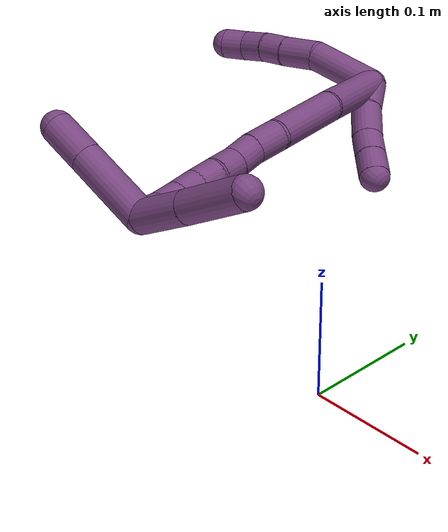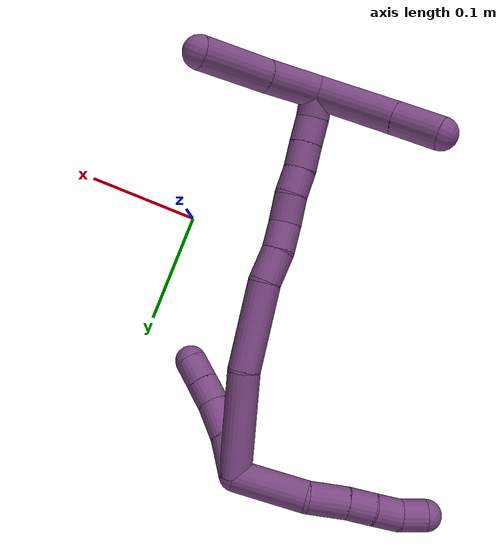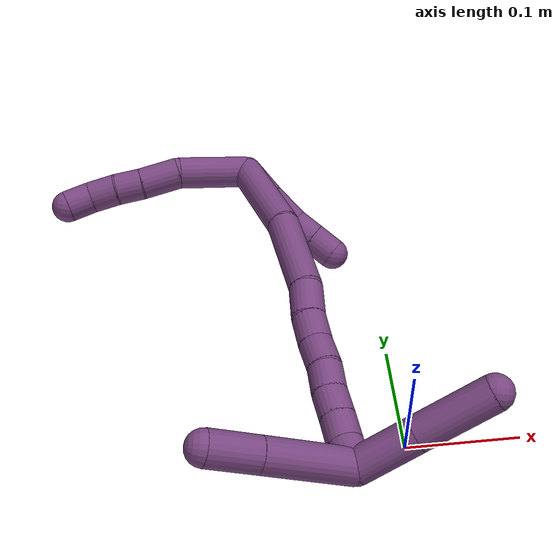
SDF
<sdf version="1.7">
 <world name="default">
  <model name="20">
   <static>0</static>
   <link name="20">
    <collision name="collision-cylinder-e_1_2_8">
     <pose>-0.001101 -0.00564 0.027772 0.200343 -0.038818 -0.003902</pose>
     <geometry><cylinder><radius>0.0125</radius><length>0.056721</length></cylinder></geometry>
     <surface>
      <friction><ode><mu>1.16</mu><mu2>1.16</mu2><slip1>0</slip1><slip2>0</slip2></ode></friction>
      <contact><ode><kp>1e+06</kp><kd>1</kd><max_vel>0</max_vel><min_depth>0.001</min_depth></ode></contact>
     </surface>
    </collision>
    <visual name="visual-cylinder-e_1_2_8">
     <pose>-0.001101 -0.00564 0.027772 0.200343 -0.038818 -0.003902</pose>
     <geometry><cylinder><radius>0.0125</radius><length>0.056721</length></cylinder></geometry>
     <material><ambient>0.478431 0.278431 0.509804 1</ambient></material>
    </visual>
    <collision name="collision-cylinder-e_2_8_9">
     <pose>-0.006888 -0.015906 0.069484 0.320464 -0.308916 -0.050317</pose>
     <geometry><cylinder><radius>0.0125</radius><length>0.030833</length></cylinder></geometry>
     <surface>
      <friction><ode><mu>1.16</mu><mu2>1.16</mu2><slip1>0</slip1><slip2>0</slip2></ode></friction>
      <contact><ode><kp>1e+06</kp><kd>1</kd><max_vel>0</max_vel><min_depth>0.001</min_depth></ode></contact>
     </surface>
    </collision>
    <visual name="visual-cylinder-e_2_8_9">
     <pose>-0.006888 -0.015906 0.069484 0.320464 -0.308916 -0.050317</pose>
     <geometry><cylinder><radius>0.0125</radius><length>0.030833</length></cylinder></geometry>
     <material><ambient>0.478431 0.278431 0.509804 1</ambient></material>
    </visual>
    <collision name="collision-cylinder-e_3_9_10">
     <pose>-0.014598 -0.022808 0.093021 0.232833 -0.297379 -0.035032</pose>
     <geometry><cylinder><radius>0.0125</radius><length>0.020634</length></cylinder></geometry>
     <surface>
      <friction><ode><mu>1.16</mu><mu2>1.16</mu2><slip1>0</slip1><slip2>0</slip2></ode></friction>
      <contact><ode><kp>1e+06</kp><kd>1</kd><max_vel>0</max_vel><min_depth>0.001</min_depth></ode></contact>
     </surface>
    </collision>
    <visual name="visual-cylinder-e_3_9_10">
     <pose>-0.014598 -0.022808 0.093021 0.232833 -0.297379 -0.035032</pose>
     <geometry><cylinder><radius>0.0125</radius><length>0.020634</length></cylinder></geometry>
     <material><ambient>0.478431 0.278431 0.509804 1</ambient></material>
    </visual>
    <collision name="collision-cylinder-e_4_10_11">
     <pose>-0.021959 -0.027396 0.112253 0.235508 -0.412646 -0.049511</pose>
     <geometry><cylinder><radius>0.0125</radius><length>0.021632</length></cylinder></geometry>
     <surface>
      <friction><ode><mu>1.16</mu><mu2>1.16</mu2><slip1>0</slip1><slip2>0</slip2></ode></friction>
      <contact><ode><kp>1e+06</kp><kd>1</kd><max_vel>0</max_vel><min_depth>0.001</min_depth></ode></contact>
     </surface>
    </collision>
    <visual name="visual-cylinder-e_4_10_11">
     <pose>-0.021959 -0.027396 0.112253 0.235508 -0.412646 -0.049511</pose>
     <geometry><cylinder><radius>0.0125</radius><length>0.021632</length></cylinder></geometry>
     <material><ambient>0.478431 0.278431 0.509804 1</ambient></material>
    </visual>
    <collision name="collision-cylinder-e_5_11_6">
     <pose>-0.028911 -0.034127 0.130574 0.470663 -0.262102 -0.063187</pose>
     <geometry><cylinder><radius>0.0125</radius><length>0.02018</length></cylinder></geometry>
     <surface>
      <friction><ode><mu>1.16</mu><mu2>1.16</mu2><slip1>0</slip1><slip2>0</slip2></ode></friction>
      <contact><ode><kp>1e+06</kp><kd>1</kd><max_vel>0</max_vel><min_depth>0.001</min_depth></ode></contact>
     </surface>
    </collision>
    <visual name="visual-cylinder-e_5_11_6">
     <pose>-0.028911 -0.034127 0.130574 0.470663 -0.262102 -0.063187</pose>
     <geometry><cylinder><radius>0.0125</radius><length>0.02018</length></cylinder></geometry>
     <material><ambient>0.478431 0.278431 0.509804 1</ambient></material>
    </visual>
    <collision name="collision-cylinder-e_1_2_12">
     <pose>-0.002008 -0.011277 -0.010142 2.30326 -0.131627 -0.293708</pose>
     <geometry><cylinder><radius>0.0125</radius><length>0.030597</length></cylinder></geometry>
     <surface>
      <friction><ode><mu>1.16</mu><mu2>1.16</mu2><slip1>0</slip1><slip2>0</slip2></ode></friction>
      <contact><ode><kp>1e+06</kp><kd>1</kd><max_vel>0</max_vel><min_depth>0.001</min_depth></ode></contact>
     </surface>
    </collision>
    <visual name="visual-cylinder-e_1_2_12">
     <pose>-0.002008 -0.011277 -0.010142 2.30326 -0.131627 -0.293708</pose>
     <geometry><cylinder><radius>0.0125</radius><length>0.030597</length></cylinder></geometry>
     <material><ambient>0.478431 0.278431 0.509804 1</ambient></material>
    </visual>
    <collision name="collision-cylinder-e_2_12_13">
     <pose>-0.007877 -0.030905 -0.03135 2.49513 -0.271616 -0.774653</pose>
     <geometry><cylinder><radius>0.0125</radius><length>0.028785</length></cylinder></geometry>
     <surface>
      <friction><ode><mu>1.16</mu><mu2>1.16</mu2><slip1>0</slip1><slip2>0</slip2></ode></friction>
      <contact><ode><kp>1e+06</kp><kd>1</kd><max_vel>0</max_vel><min_depth>0.001</min_depth></ode></contact>
     </surface>
    </collision>
    <visual name="visual-cylinder-e_2_12_13">
     <pose>-0.007877 -0.030905 -0.03135 2.49513 -0.271616 -0.774653</pose>
     <geometry><cylinder><radius>0.0125</radius><length>0.028785</length></cylinder></geometry>
     <material><ambient>0.478431 0.278431 0.509804 1</ambient></material>
    </visual>
    <collision name="collision-cylinder-e_3_13_14">
     <pose>-0.013189 -0.04459 -0.050759 2.57271 -0.14543 -0.488355</pose>
     <geometry><cylinder><radius>0.0125</radius><length>0.020013</length></cylinder></geometry>
     <surface>
      <friction><ode><mu>1.16</mu><mu2>1.16</mu2><slip1>0</slip1><slip2>0</slip2></ode></friction>
      <contact><ode><kp>1e+06</kp><kd>1</kd><max_vel>0</max_vel><min_depth>0.001</min_depth></ode></contact>
     </surface>
    </collision>
    <visual name="visual-cylinder-e_3_13_14">
     <pose>-0.013189 -0.04459 -0.050759 2.57271 -0.14543 -0.488355</pose>
     <geometry><cylinder><radius>0.0125</radius><length>0.020013</length></cylinder></geometry>
     <material><ambient>0.478431 0.278431 0.509804 1</ambient></material>
    </visual>
    <collision name="collision-cylinder-e_4_14_5">
     <pose>-0.016299 -0.05531 -0.067724 2.58323 -0.16184 -0.551386</pose>
     <geometry><cylinder><radius>0.0125</radius><length>0.020605</length></cylinder></geometry>
     <surface>
      <friction><ode><mu>1.16</mu><mu2>1.16</mu2><slip1>0</slip1><slip2>0</slip2></ode></friction>
      <contact><ode><kp>1e+06</kp><kd>1</kd><max_vel>0</max_vel><min_depth>0.001</min_depth></ode></contact>
     </surface>
    </collision>
    <visual name="visual-cylinder-e_4_14_5">
     <pose>-0.016299 -0.05531 -0.067724 2.58323 -0.16184 -0.551386</pose>
     <geometry><cylinder><radius>0.0125</radius><length>0.020605</length></cylinder></geometry>
     <material><ambient>0.478431 0.278431 0.509804 1</ambient></material>
    </visual>
    <collision name="collision-cylinder-e_1_2_15">
     <pose>0.011477 -0.037139 -0.013118 1.91032 0.28354 0.398215</pose>
     <geometry><cylinder><radius>0.0125</radius><length>0.082051</length></cylinder></geometry>
     <surface>
      <friction><ode><mu>1.16</mu><mu2>1.16</mu2><slip1>0</slip1><slip2>0</slip2></ode></friction>
      <contact><ode><kp>1e+06</kp><kd>1</kd><max_vel>0</max_vel><min_depth>0.001</min_depth></ode></contact>
     </surface>
    </collision>
    <visual name="visual-cylinder-e_1_2_15">
     <pose>0.011477 -0.037139 -0.013118 1.91032 0.28354 0.398215</pose>
     <geometry><cylinder><radius>0.0125</radius><length>0.082051</length></cylinder></geometry>
     <material><ambient>0.478431 0.278431 0.509804 1</ambient></material>
    </visual>
    <collision name="collision-cylinder-e_2_15_16">
     <pose>0.027038 -0.107045 -0.033681 1.79422 0.120944 0.151403</pose>
     <geometry><cylinder><radius>0.0125</radius><length>0.067699</length></cylinder></geometry>
     <surface>
      <friction><ode><mu>1.16</mu><mu2>1.16</mu2><slip1>0</slip1><slip2>0</slip2></ode></friction>
      <contact><ode><kp>1e+06</kp><kd>1</kd><max_vel>0</max_vel><min_depth>0.001</min_depth></ode></contact>
     </surface>
    </collision>
    <visual name="visual-cylinder-e_2_15_16">
     <pose>0.027038 -0.107045 -0.033681 1.79422 0.120944 0.151403</pose>
     <geometry><cylinder><radius>0.0125</radius><length>0.067699</length></cylinder></geometry>
     <material><ambient>0.478431 0.278431 0.509804 1</ambient></material>
    </visual>
    <collision name="collision-cylinder-e_3_16_17">
     <pose>0.030376 -0.152653 -0.042125 1.64847 -0.057862 -0.062537</pose>
     <geometry><cylinder><radius>0.0125</radius><length>0.025803</length></cylinder></geometry>
     <surface>
      <friction><ode><mu>1.16</mu><mu2>1.16</mu2><slip1>0</slip1><slip2>0</slip2></ode></friction>
      <contact><ode><kp>1e+06</kp><kd>1</kd><max_vel>0</max_vel><min_depth>0.001</min_depth></ode></contact>
     </surface>
    </collision>
    <visual name="visual-cylinder-e_3_16_17">
     <pose>0.030376 -0.152653 -0.042125 1.64847 -0.057862 -0.062537</pose>
     <geometry><cylinder><radius>0.0125</radius><length>0.025803</length></cylinder></geometry>
     <material><ambient>0.478431 0.278431 0.509804 1</ambient></material>
    </visual>
    <collision name="collision-cylinder-e_4_17_18">
     <pose>0.028965 -0.176011 -0.045658 1.80714 -0.061418 -0.077951</pose>
     <geometry><cylinder><radius>0.0125</radius><length>0.021677</length></cylinder></geometry>
     <surface>
      <friction><ode><mu>1.16</mu><mu2>1.16</mu2><slip1>0</slip1><slip2>0</slip2></ode></friction>
      <contact><ode><kp>1e+06</kp><kd>1</kd><max_vel>0</max_vel><min_depth>0.001</min_depth></ode></contact>
     </surface>
    </collision>
    <visual name="visual-cylinder-e_4_17_18">
     <pose>0.028965 -0.176011 -0.045658 1.80714 -0.061418 -0.077951</pose>
     <geometry><cylinder><radius>0.0125</radius><length>0.021677</length></cylinder></geometry>
     <material><ambient>0.478431 0.278431 0.509804 1</ambient></material>
    </visual>
    <collision name="collision-cylinder-e_5_18_19">
     <pose>0.029717 -0.197118 -0.050821 1.81425 0.129214 0.16509</pose>
     <geometry><cylinder><radius>0.0125</radius><length>0.022006</length></cylinder></geometry>
     <surface>
      <friction><ode><mu>1.16</mu><mu2>1.16</mu2><slip1>0</slip1><slip2>0</slip2></ode></friction>
      <contact><ode><kp>1e+06</kp><kd>1</kd><max_vel>0</max_vel><min_depth>0.001</min_depth></ode></contact>
     </surface>
    </collision>
    <visual name="visual-cylinder-e_5_18_19">
     <pose>0.029717 -0.197118 -0.050821 1.81425 0.129214 0.16509</pose>
     <geometry><cylinder><radius>0.0125</radius><length>0.022006</length></cylinder></geometry>
     <material><ambient>0.478431 0.278431 0.509804 1</ambient></material>
    </visual>
    <collision name="collision-cylinder-e_6_19_20">
     <pose>0.030941 -0.217757 -0.054891 1.71305 -0.019095 -0.022025</pose>
     <geometry><cylinder><radius>0.0125</radius><length>0.020309</length></cylinder></geometry>
     <surface>
      <friction><ode><mu>1.16</mu><mu2>1.16</mu2><slip1>0</slip1><slip2>0</slip2></ode></friction>
      <contact><ode><kp>1e+06</kp><kd>1</kd><max_vel>0</max_vel><min_depth>0.001</min_depth></ode></contact>
     </surface>
    </collision>
    <visual name="visual-cylinder-e_6_19_20">
     <pose>0.030941 -0.217757 -0.054891 1.71305 -0.019095 -0.022025</pose>
     <geometry><cylinder><radius>0.0125</radius><length>0.020309</length></cylinder></geometry>
     <material><ambient>0.478431 0.278431 0.509804 1</ambient></material>
    </visual>
    <collision name="collision-cylinder-e_7_20_21">
     <pose>0.031243 -0.237564 -0.058684 1.80751 0.049364 0.062681</pose>
     <geometry><cylinder><radius>0.0125</radius><length>0.020099</length></cylinder></geometry>
     <surface>
      <friction><ode><mu>1.16</mu><mu2>1.16</mu2><slip1>0</slip1><slip2>0</slip2></ode></friction>
      <contact><ode><kp>1e+06</kp><kd>1</kd><max_vel>0</max_vel><min_depth>0.001</min_depth></ode></contact>
     </surface>
    </collision>
    <visual name="visual-cylinder-e_7_20_21">
     <pose>0.031243 -0.237564 -0.058684 1.80751 0.049364 0.062681</pose>
     <geometry><cylinder><radius>0.0125</radius><length>0.020099</length></cylinder></geometry>
     <material><ambient>0.478431 0.278431 0.509804 1</ambient></material>
    </visual>
    <collision name="collision-cylinder-e_8_21_22">
     <pose>0.03229 -0.257245 -0.063116 1.77728 0.054335 0.066887</pose>
     <geometry><cylinder><radius>0.0125</radius><length>0.020308</length></cylinder></geometry>
     <surface>
      <friction><ode><mu>1.16</mu><mu2>1.16</mu2><slip1>0</slip1><slip2>0</slip2></ode></friction>
      <contact><ode><kp>1e+06</kp><kd>1</kd><max_vel>0</max_vel><min_depth>0.001</min_depth></ode></contact>
     </surface>
    </collision>
    <visual name="visual-cylinder-e_8_21_22">
     <pose>0.03229 -0.257245 -0.063116 1.77728 0.054335 0.066887</pose>
     <geometry><cylinder><radius>0.0125</radius><length>0.020308</length></cylinder></geometry>
     <material><ambient>0.478431 0.278431 0.509804 1</ambient></material>
    </visual>
    <collision name="collision-cylinder-e_9_22_1">
     <pose>0.035466 -0.276557 -0.067534 1.81497 0.264884 0.337725</pose>
     <geometry><cylinder><radius>0.0125</radius><length>0.020049</length></cylinder></geometry>
     <surface>
      <friction><ode><mu>1.16</mu><mu2>1.16</mu2><slip1>0</slip1><slip2>0</slip2></ode></friction>
      <contact><ode><kp>1e+06</kp><kd>1</kd><max_vel>0</max_vel><min_depth>0.001</min_depth></ode></contact>
     </surface>
    </collision>
    <visual name="visual-cylinder-e_9_22_1">
     <pose>0.035466 -0.276557 -0.067534 1.81497 0.264884 0.337725</pose>
     <geometry><cylinder><radius>0.0125</radius><length>0.020049</length></cylinder></geometry>
     <material><ambient>0.478431 0.278431 0.509804 1</ambient></material>
    </visual>
    <collision name="collision-cylinder-e_1_1_23">
     <pose>0.042315 -0.287377 -0.038177 0.045161 0.132378 0.002994</pose>
     <geometry><cylinder><radius>0.0125</radius><length>0.064016</length></cylinder></geometry>
     <surface>
      <friction><ode><mu>1.16</mu><mu2>1.16</mu2><slip1>0</slip1><slip2>0</slip2></ode></friction>
      <contact><ode><kp>1e+06</kp><kd>1</kd><max_vel>0</max_vel><min_depth>0.001</min_depth></ode></contact>
     </surface>
    </collision>
    <visual name="visual-cylinder-e_1_1_23">
     <pose>0.042315 -0.287377 -0.038177 0.045161 0.132378 0.002994</pose>
     <geometry><cylinder><radius>0.0125</radius><length>0.064016</length></cylinder></geometry>
     <material><ambient>0.478431 0.278431 0.509804 1</ambient></material>
    </visual>
    <collision name="collision-cylinder-e_2_23_4">
     <pose>0.048767 -0.289564 0.011356 0.042279 0.124103 0.002627</pose>
     <geometry><cylinder><radius>0.0125</radius><length>0.035984</length></cylinder></geometry>
     <surface>
      <friction><ode><mu>1.16</mu><mu2>1.16</mu2><slip1>0</slip1><slip2>0</slip2></ode></friction>
      <contact><ode><kp>1e+06</kp><kd>1</kd><max_vel>0</max_vel><min_depth>0.001</min_depth></ode></contact>
     </surface>
    </collision>
    <visual name="visual-cylinder-e_2_23_4">
     <pose>0.048767 -0.289564 0.011356 0.042279 0.124103 0.002627</pose>
     <geometry><cylinder><radius>0.0125</radius><length>0.035984</length></cylinder></geometry>
     <material><ambient>0.478431 0.278431 0.509804 1</ambient></material>
    </visual>
    <collision name="collision-cylinder-e_1_1_24">
     <pose>0.052114 -0.280009 -0.086124 -2.79142 0.681153 -2.21563</pose>
     <geometry><cylinder><radius>0.0125</radius><length>0.044541</length></cylinder></geometry>
     <surface>
      <friction><ode><mu>1.16</mu><mu2>1.16</mu2><slip1>0</slip1><slip2>0</slip2></ode></friction>
      <contact><ode><kp>1e+06</kp><kd>1</kd><max_vel>0</max_vel><min_depth>0.001</min_depth></ode></contact>
     </surface>
    </collision>
    <visual name="visual-cylinder-e_1_1_24">
     <pose>0.052114 -0.280009 -0.086124 -2.79142 0.681153 -2.21563</pose>
     <geometry><cylinder><radius>0.0125</radius><length>0.044541</length></cylinder></geometry>
     <material><ambient>0.478431 0.278431 0.509804 1</ambient></material>
    </visual>
    <collision name="collision-cylinder-e_2_24_3">
     <pose>0.084202 -0.267301 -0.122292 -2.81379 0.709492 -2.30173</pose>
     <geometry><cylinder><radius>0.0125</radius><length>0.055459</length></cylinder></geometry>
     <surface>
      <friction><ode><mu>1.16</mu><mu2>1.16</mu2><slip1>0</slip1><slip2>0</slip2></ode></friction>
      <contact><ode><kp>1e+06</kp><kd>1</kd><max_vel>0</max_vel><min_depth>0.001</min_depth></ode></contact>
     </surface>
    </collision>
    <visual name="visual-cylinder-e_2_24_3">
     <pose>0.084202 -0.267301 -0.122292 -2.81379 0.709492 -2.30173</pose>
     <geometry><cylinder><radius>0.0125</radius><length>0.055459</length></cylinder></geometry>
     <material><ambient>0.478431 0.278431 0.509804 1</ambient></material>
    </visual>
    <collision name="collision-sphere-3">
     <pose>0.102266 -0.260527 -0.14221 0 -0 0</pose>
     <geometry><sphere><radius>0.0125</radius></sphere></geometry>
     <surface>
      <friction><ode><mu>1.16</mu><mu2>1.16</mu2><slip1>0</slip1><slip2>0</slip2></ode></friction>
      <contact><ode><kp>1e+06</kp><kd>1</kd><max_vel>0</max_vel><min_depth>0.001</min_depth></ode></contact>
     </surface>
    </collision>
    <visual name="visual-sphere-3">
     <pose>0.102266 -0.260527 -0.14221 0 -0 0</pose>
     <geometry><sphere><radius>0.0125</radius></sphere></geometry>
     <material><ambient>0.478431 0.278431 0.509804 1</ambient></material>
    </visual>
    <collision name="collision-sphere-24">
     <pose>0.066137 -0.274074 -0.102374 0 -0 0</pose>
     <geometry><sphere><radius>0.0125</radius></sphere></geometry>
     <surface>
      <friction><ode><mu>1.16</mu><mu2>1.16</mu2><slip1>0</slip1><slip2>0</slip2></ode></friction>
      <contact><ode><kp>1e+06</kp><kd>1</kd><max_vel>0</max_vel><min_depth>0.001</min_depth></ode></contact>
     </surface>
    </collision>
    <visual name="visual-sphere-24">
     <pose>0.066137 -0.274074 -0.102374 0 -0 0</pose>
     <geometry><sphere><radius>0.0125</radius></sphere></geometry>
     <material><ambient>0.478431 0.278431 0.509804 1</ambient></material>
    </visual>
    <collision name="collision-sphere-4">
     <pose>0.050994 -0.290319 0.029194 0 -0 0</pose>
     <geometry><sphere><radius>0.0125</radius></sphere></geometry>
     <surface>
      <friction><ode><mu>1.16</mu><mu2>1.16</mu2><slip1>0</slip1><slip2>0</slip2></ode></friction>
      <contact><ode><kp>1e+06</kp><kd>1</kd><max_vel>0</max_vel><min_depth>0.001</min_depth></ode></contact>
     </surface>
    </collision>
    <visual name="visual-sphere-4">
     <pose>0.050994 -0.290319 0.029194 0 -0 0</pose>
     <geometry><sphere><radius>0.0125</radius></sphere></geometry>
     <material><ambient>0.478431 0.278431 0.509804 1</ambient></material>
    </visual>
    <collision name="collision-sphere-23">
     <pose>0.04654 -0.288809 -0.006481 0 -0 0</pose>
     <geometry><sphere><radius>0.0125</radius></sphere></geometry>
     <surface>
      <friction><ode><mu>1.16</mu><mu2>1.16</mu2><slip1>0</slip1><slip2>0</slip2></ode></friction>
      <contact><ode><kp>1e+06</kp><kd>1</kd><max_vel>0</max_vel><min_depth>0.001</min_depth></ode></contact>
     </surface>
    </collision>
    <visual name="visual-sphere-23">
     <pose>0.04654 -0.288809 -0.006481 0 -0 0</pose>
     <geometry><sphere><radius>0.0125</radius></sphere></geometry>
     <material><ambient>0.478431 0.278431 0.509804 1</ambient></material>
    </visual>
    <collision name="collision-sphere-1">
     <pose>0.038091 -0.285945 -0.069873 0 -0 0</pose>
     <geometry><sphere><radius>0.0125</radius></sphere></geometry>
     <surface>
      <friction><ode><mu>1.16</mu><mu2>1.16</mu2><slip1>0</slip1><slip2>0</slip2></ode></friction>
      <contact><ode><kp>1e+06</kp><kd>1</kd><max_vel>0</max_vel><min_depth>0.001</min_depth></ode></contact>
     </surface>
    </collision>
    <visual name="visual-sphere-1">
     <pose>0.038091 -0.285945 -0.069873 0 -0 0</pose>
     <geometry><sphere><radius>0.0125</radius></sphere></geometry>
     <material><ambient>0.478431 0.278431 0.509804 1</ambient></material>
    </visual>
    <collision name="collision-sphere-22">
     <pose>0.032842 -0.267169 -0.065195 0 -0 0</pose>
     <geometry><sphere><radius>0.0125</radius></sphere></geometry>
     <surface>
      <friction><ode><mu>1.16</mu><mu2>1.16</mu2><slip1>0</slip1><slip2>0</slip2></ode></friction>
      <contact><ode><kp>1e+06</kp><kd>1</kd><max_vel>0</max_vel><min_depth>0.001</min_depth></ode></contact>
     </surface>
    </collision>
    <visual name="visual-sphere-22">
     <pose>0.032842 -0.267169 -0.065195 0 -0 0</pose>
     <geometry><sphere><radius>0.0125</radius></sphere></geometry>
     <material><ambient>0.478431 0.278431 0.509804 1</ambient></material>
    </visual>
    <collision name="collision-sphere-21">
     <pose>0.031739 -0.247322 -0.061038 0 -0 0</pose>
     <geometry><sphere><radius>0.0125</radius></sphere></geometry>
     <surface>
      <friction><ode><mu>1.16</mu><mu2>1.16</mu2><slip1>0</slip1><slip2>0</slip2></ode></friction>
      <contact><ode><kp>1e+06</kp><kd>1</kd><max_vel>0</max_vel><min_depth>0.001</min_depth></ode></contact>
     </surface>
    </collision>
    <visual name="visual-sphere-21">
     <pose>0.031739 -0.247322 -0.061038 0 -0 0</pose>
     <geometry><sphere><radius>0.0125</radius></sphere></geometry>
     <material><ambient>0.478431 0.278431 0.509804 1</ambient></material>
    </visual>
    <collision name="collision-sphere-6">
     <pose>-0.031525 -0.038547 0.139259 0 -0 0</pose>
     <geometry><sphere><radius>0.0125</radius></sphere></geometry>
     <surface>
      <friction><ode><mu>1.16</mu><mu2>1.16</mu2><slip1>0</slip1><slip2>0</slip2></ode></friction>
      <contact><ode><kp>1e+06</kp><kd>1</kd><max_vel>0</max_vel><min_depth>0.001</min_depth></ode></contact>
     </surface>
    </collision>
    <visual name="visual-sphere-6">
     <pose>-0.031525 -0.038547 0.139259 0 -0 0</pose>
     <geometry><sphere><radius>0.0125</radius></sphere></geometry>
     <material><ambient>0.478431 0.278431 0.509804 1</ambient></material>
    </visual>
    <collision name="collision-sphere-11">
     <pose>-0.026296 -0.029708 0.121888 0 -0 0</pose>
     <geometry><sphere><radius>0.0125</radius></sphere></geometry>
     <surface>
      <friction><ode><mu>1.16</mu><mu2>1.16</mu2><slip1>0</slip1><slip2>0</slip2></ode></friction>
      <contact><ode><kp>1e+06</kp><kd>1</kd><max_vel>0</max_vel><min_depth>0.001</min_depth></ode></contact>
     </surface>
    </collision>
    <visual name="visual-sphere-11">
     <pose>-0.026296 -0.029708 0.121888 0 -0 0</pose>
     <geometry><sphere><radius>0.0125</radius></sphere></geometry>
     <material><ambient>0.478431 0.278431 0.509804 1</ambient></material>
    </visual>
    <collision name="collision-sphere-10">
     <pose>-0.017621 -0.025084 0.102619 0 -0 0</pose>
     <geometry><sphere><radius>0.0125</radius></sphere></geometry>
     <surface>
      <friction><ode><mu>1.16</mu><mu2>1.16</mu2><slip1>0</slip1><slip2>0</slip2></ode></friction>
      <contact><ode><kp>1e+06</kp><kd>1</kd><max_vel>0</max_vel><min_depth>0.001</min_depth></ode></contact>
     </surface>
    </collision>
    <visual name="visual-sphere-10">
     <pose>-0.017621 -0.025084 0.102619 0 -0 0</pose>
     <geometry><sphere><radius>0.0125</radius></sphere></geometry>
     <material><ambient>0.478431 0.278431 0.509804 1</ambient></material>
    </visual>
    <collision name="collision-sphere-9">
     <pose>-0.011575 -0.020532 0.083423 0 -0 0</pose>
     <geometry><sphere><radius>0.0125</radius></sphere></geometry>
     <surface>
      <friction><ode><mu>1.16</mu><mu2>1.16</mu2><slip1>0</slip1><slip2>0</slip2></ode></friction>
      <contact><ode><kp>1e+06</kp><kd>1</kd><max_vel>0</max_vel><min_depth>0.001</min_depth></ode></contact>
     </surface>
    </collision>
    <visual name="visual-sphere-9">
     <pose>-0.011575 -0.020532 0.083423 0 -0 0</pose>
     <geometry><sphere><radius>0.0125</radius></sphere></geometry>
     <material><ambient>0.478431 0.278431 0.509804 1</ambient></material>
    </visual>
    <collision name="collision-sphere-2">
     <geometry><sphere><radius>0.0125</radius></sphere></geometry>
     <surface>
      <friction><ode><mu>1.16</mu><mu2>1.16</mu2><slip1>0</slip1><slip2>0</slip2></ode></friction>
      <contact><ode><kp>1e+06</kp><kd>1</kd><max_vel>0</max_vel><min_depth>0.001</min_depth></ode></contact>
     </surface>
    </collision>
    <visual name="visual-sphere-2">
     <geometry><sphere><radius>0.0125</radius></sphere></geometry>
     <material><ambient>0.478431 0.278431 0.509804 1</ambient></material>
    </visual>
    <collision name="collision-sphere-19">
     <pose>0.031135 -0.207707 -0.053451 0 -0 0</pose>
     <geometry><sphere><radius>0.0125</radius></sphere></geometry>
     <surface>
      <friction><ode><mu>1.16</mu><mu2>1.16</mu2><slip1>0</slip1><slip2>0</slip2></ode></friction>
      <contact><ode><kp>1e+06</kp><kd>1</kd><max_vel>0</max_vel><min_depth>0.001</min_depth></ode></contact>
     </surface>
    </collision>
    <visual name="visual-sphere-19">
     <pose>0.031135 -0.207707 -0.053451 0 -0 0</pose>
     <geometry><sphere><radius>0.0125</radius></sphere></geometry>
     <material><ambient>0.478431 0.278431 0.509804 1</ambient></material>
    </visual>
    <collision name="collision-sphere-8">
     <pose>-0.002201 -0.011279 0.055545 0 -0 0</pose>
     <geometry><sphere><radius>0.0125</radius></sphere></geometry>
     <surface>
      <friction><ode><mu>1.16</mu><mu2>1.16</mu2><slip1>0</slip1><slip2>0</slip2></ode></friction>
      <contact><ode><kp>1e+06</kp><kd>1</kd><max_vel>0</max_vel><min_depth>0.001</min_depth></ode></contact>
     </surface>
    </collision>
    <visual name="visual-sphere-8">
     <pose>-0.002201 -0.011279 0.055545 0 -0 0</pose>
     <geometry><sphere><radius>0.0125</radius></sphere></geometry>
     <material><ambient>0.478431 0.278431 0.509804 1</ambient></material>
    </visual>
    <collision name="collision-sphere-12">
     <pose>-0.004016 -0.022553 -0.020283 0 -0 0</pose>
     <geometry><sphere><radius>0.0125</radius></sphere></geometry>
     <surface>
      <friction><ode><mu>1.16</mu><mu2>1.16</mu2><slip1>0</slip1><slip2>0</slip2></ode></friction>
      <contact><ode><kp>1e+06</kp><kd>1</kd><max_vel>0</max_vel><min_depth>0.001</min_depth></ode></contact>
     </surface>
    </collision>
    <visual name="visual-sphere-12">
     <pose>-0.004016 -0.022553 -0.020283 0 -0 0</pose>
     <geometry><sphere><radius>0.0125</radius></sphere></geometry>
     <material><ambient>0.478431 0.278431 0.509804 1</ambient></material>
    </visual>
    <collision name="collision-sphere-13">
     <pose>-0.011738 -0.039256 -0.042418 0 -0 0</pose>
     <geometry><sphere><radius>0.0125</radius></sphere></geometry>
     <surface>
      <friction><ode><mu>1.16</mu><mu2>1.16</mu2><slip1>0</slip1><slip2>0</slip2></ode></friction>
      <contact><ode><kp>1e+06</kp><kd>1</kd><max_vel>0</max_vel><min_depth>0.001</min_depth></ode></contact>
     </surface>
    </collision>
    <visual name="visual-sphere-13">
     <pose>-0.011738 -0.039256 -0.042418 0 -0 0</pose>
     <geometry><sphere><radius>0.0125</radius></sphere></geometry>
     <material><ambient>0.478431 0.278431 0.509804 1</ambient></material>
    </visual>
    <collision name="collision-sphere-14">
     <pose>-0.014639 -0.049924 -0.059101 0 -0 0</pose>
     <geometry><sphere><radius>0.0125</radius></sphere></geometry>
     <surface>
      <friction><ode><mu>1.16</mu><mu2>1.16</mu2><slip1>0</slip1><slip2>0</slip2></ode></friction>
      <contact><ode><kp>1e+06</kp><kd>1</kd><max_vel>0</max_vel><min_depth>0.001</min_depth></ode></contact>
     </surface>
    </collision>
    <visual name="visual-sphere-14">
     <pose>-0.014639 -0.049924 -0.059101 0 -0 0</pose>
     <geometry><sphere><radius>0.0125</radius></sphere></geometry>
     <material><ambient>0.478431 0.278431 0.509804 1</ambient></material>
    </visual>
    <collision name="collision-sphere-5">
     <pose>-0.017959 -0.060697 -0.076348 0 -0 0</pose>
     <geometry><sphere><radius>0.0125</radius></sphere></geometry>
     <surface>
      <friction><ode><mu>1.16</mu><mu2>1.16</mu2><slip1>0</slip1><slip2>0</slip2></ode></friction>
      <contact><ode><kp>1e+06</kp><kd>1</kd><max_vel>0</max_vel><min_depth>0.001</min_depth></ode></contact>
     </surface>
    </collision>
    <visual name="visual-sphere-5">
     <pose>-0.017959 -0.060697 -0.076348 0 -0 0</pose>
     <geometry><sphere><radius>0.0125</radius></sphere></geometry>
     <material><ambient>0.478431 0.278431 0.509804 1</ambient></material>
    </visual>
    <collision name="collision-sphere-15">
     <pose>0.022954 -0.074277 -0.026235 0 -0 0</pose>
     <geometry><sphere><radius>0.0125</radius></sphere></geometry>
     <surface>
      <friction><ode><mu>1.16</mu><mu2>1.16</mu2><slip1>0</slip1><slip2>0</slip2></ode></friction>
      <contact><ode><kp>1e+06</kp><kd>1</kd><max_vel>0</max_vel><min_depth>0.001</min_depth></ode></contact>
     </surface>
    </collision>
    <visual name="visual-sphere-15">
     <pose>0.022954 -0.074277 -0.026235 0 -0 0</pose>
     <geometry><sphere><radius>0.0125</radius></sphere></geometry>
     <material><ambient>0.478431 0.278431 0.509804 1</ambient></material>
    </visual>
    <collision name="collision-sphere-16">
     <pose>0.031122 -0.139812 -0.041126 0 -0 0</pose>
     <geometry><sphere><radius>0.0125</radius></sphere></geometry>
     <surface>
      <friction><ode><mu>1.16</mu><mu2>1.16</mu2><slip1>0</slip1><slip2>0</slip2></ode></friction>
      <contact><ode><kp>1e+06</kp><kd>1</kd><max_vel>0</max_vel><min_depth>0.001</min_depth></ode></contact>
     </surface>
    </collision>
    <visual name="visual-sphere-16">
     <pose>0.031122 -0.139812 -0.041126 0 -0 0</pose>
     <geometry><sphere><radius>0.0125</radius></sphere></geometry>
     <material><ambient>0.478431 0.278431 0.509804 1</ambient></material>
    </visual>
    <collision name="collision-sphere-17">
     <pose>0.02963 -0.165494 -0.043125 0 -0 0</pose>
     <geometry><sphere><radius>0.0125</radius></sphere></geometry>
     <surface>
      <friction><ode><mu>1.16</mu><mu2>1.16</mu2><slip1>0</slip1><slip2>0</slip2></ode></friction>
      <contact><ode><kp>1e+06</kp><kd>1</kd><max_vel>0</max_vel><min_depth>0.001</min_depth></ode></contact>
     </surface>
    </collision>
    <visual name="visual-sphere-17">
     <pose>0.02963 -0.165494 -0.043125 0 -0 0</pose>
     <geometry><sphere><radius>0.0125</radius></sphere></geometry>
     <material><ambient>0.478431 0.278431 0.509804 1</ambient></material>
    </visual>
    <collision name="collision-sphere-18">
     <pose>0.028299 -0.186529 -0.048191 0 -0 0</pose>
     <geometry><sphere><radius>0.0125</radius></sphere></geometry>
     <surface>
      <friction><ode><mu>1.16</mu><mu2>1.16</mu2><slip1>0</slip1><slip2>0</slip2></ode></friction>
      <contact><ode><kp>1e+06</kp><kd>1</kd><max_vel>0</max_vel><min_depth>0.001</min_depth></ode></contact>
     </surface>
    </collision>
    <visual name="visual-sphere-18">
     <pose>0.028299 -0.186529 -0.048191 0 -0 0</pose>
     <geometry><sphere><radius>0.0125</radius></sphere></geometry>
     <material><ambient>0.478431 0.278431 0.509804 1</ambient></material>
    </visual>
    <collision name="collision-sphere-20">
     <pose>0.030747 -0.227807 -0.05633 0 -0 0</pose>
     <geometry><sphere><radius>0.0125</radius></sphere></geometry>
     <surface>
      <friction><ode><mu>1.16</mu><mu2>1.16</mu2><slip1>0</slip1><slip2>0</slip2></ode></friction>
      <contact><ode><kp>1e+06</kp><kd>1</kd><max_vel>0</max_vel><min_depth>0.001</min_depth></ode></contact>
     </surface>
    </collision>
    <visual name="visual-sphere-20">
     <pose>0.030747 -0.227807 -0.05633 0 -0 0</pose>
     <geometry><sphere><radius>0.0125</radius></sphere></geometry>
     <material><ambient>0.478431 0.278431 0.509804 1</ambient></material>
    </visual>
    <inertial>
     <pose>0.021858 -0.139058 -0.022745 0 -0 0</pose>
     <mass>0.75</mass>
     <inertia><ixx>0.000142</ixx><ixy>0</ixy><ixz>0</ixz><iyy>2.6e-05</iyy><iyz>0</iyz><izz>5.9e-05</izz></inertia>
    </inertial>
   </link>
   <pose>-0.116196 0.177686 0.165142 0.195559 -1.33623 -0.27739</pose>
  </model>
 </world>
</sdf>
